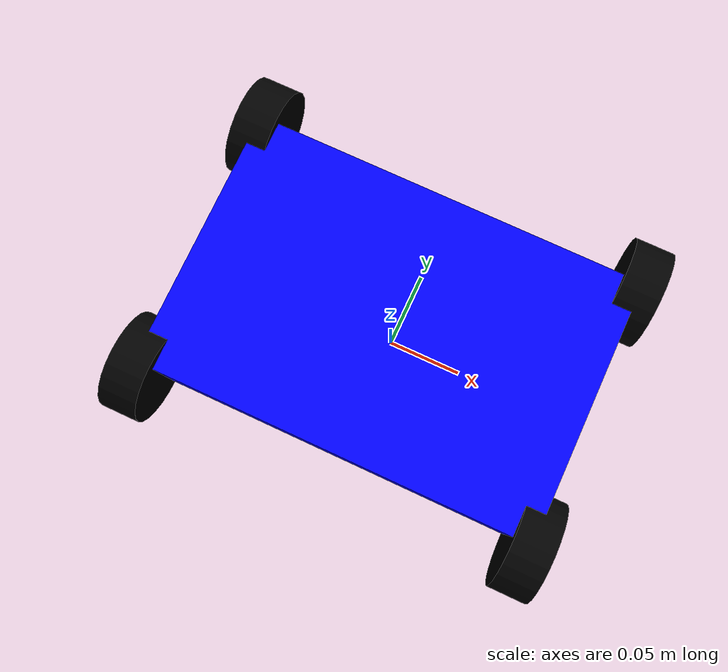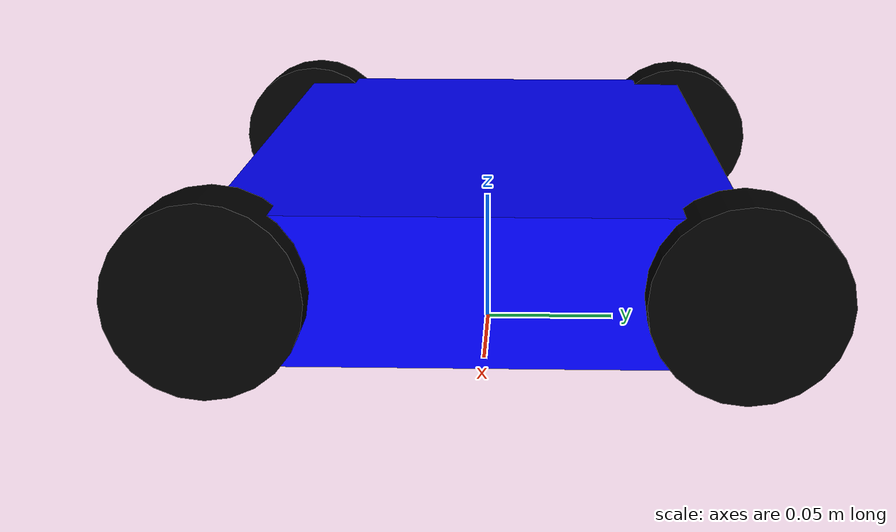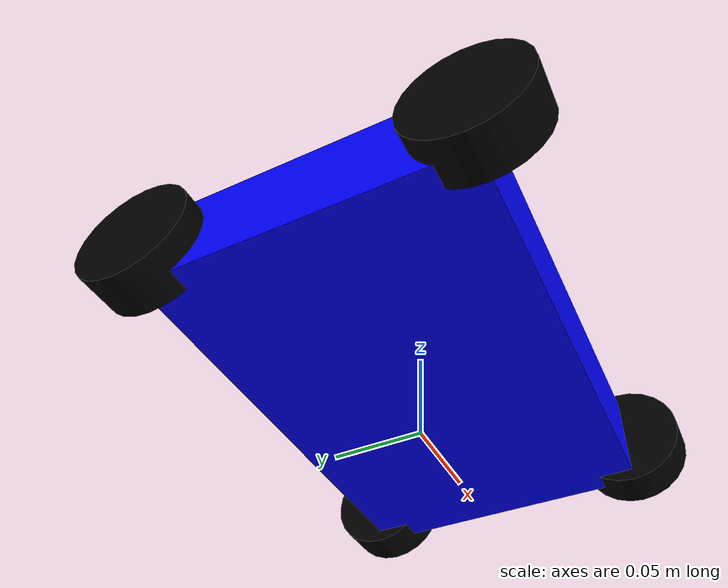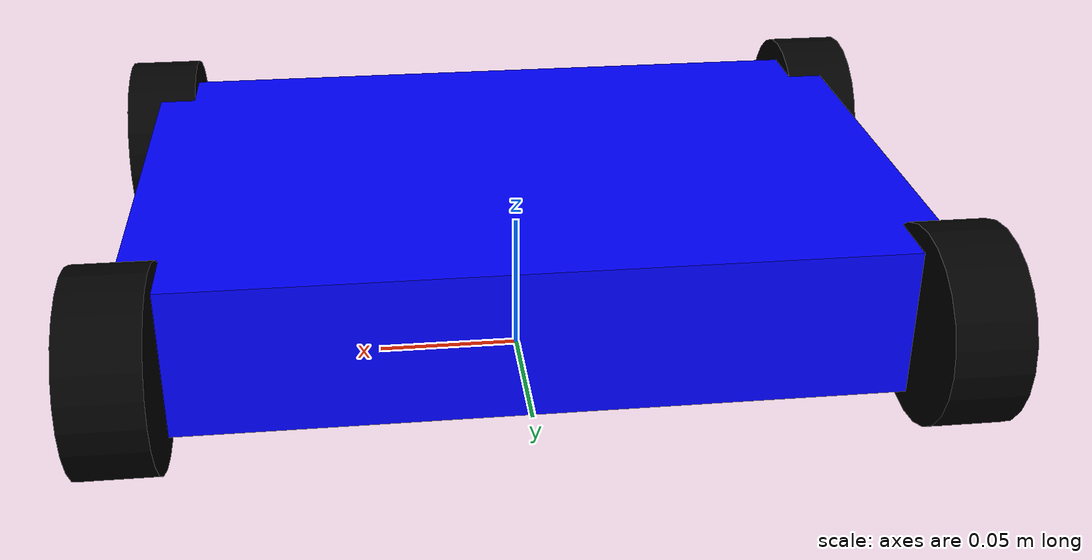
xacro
<?xml version="1.0"?>
<robot xmlns:xacro="http://ros.org/wiki/xacro" name="smart_car">

  <!-- Robot parameters -->
  <xacro:property name="wheel_diameter" value="0.064"/>
  <xacro:property name="wheel_radius" value="${wheel_diameter/2.0}"/>
  <xacro:property name="wheel_width" value="0.025"/>
  <xacro:property name="wheelbase_length" value="0.257"/>
  <xacro:property name="wheelbase_width" value="0.17"/>

  <!-- Base footprint -->
  <link name="base_footprint"/>

  <!-- Chassis -->
  <link name="chassis_link">
    <inertial>
      <origin xyz="0 0 0.05" rpy="0 0 0"/>
      <mass value="2.0"/>
      <inertia ixx="0.02" iyy="0.02" izz="0.04" ixy="0.0" ixz="0.0" iyz="0.0"/>
    </inertial>
    <visual>
      <geometry>
        <box size="${wheelbase_length} ${wheelbase_width} 0.05"/>
      </geometry>
      <material name="blue">
        <color rgba="0 0 1 1"/>
      </material>
    </visual>
    <collision>
      <geometry>
        <box size="${wheelbase_length} ${wheelbase_width} 0.05"/>
      </geometry>
    </collision>
  </link>

  <!-- Connect base_footprint to chassis -->
  <joint name="base_to_chassis" type="fixed">
    <parent link="base_footprint"/>
    <child link="chassis_link"/>
    <origin xyz="0 0 0.05" rpy="0 0 0"/>
  </joint>

  <!-- MACRO for wheels -->
  <xacro:macro name="wheel" params="name x y">
    <link name="${name}_link">
      <inertial>
        <origin xyz="0 0 0" rpy="0 0 0"/>
        <mass value="0.1"/>
        <inertia ixx="0.001" iyy="0.001" izz="0.002" ixy="0.0" ixz="0.0" iyz="0.0"/>
      </inertial>
      <visual>
        <geometry>
          <cylinder radius="${wheel_radius}" length="${wheel_width}"/>
        </geometry>
        <material name="black">
          <color rgba="0 0 0 1"/>
        </material>
      </visual>
      <collision>
        <geometry>
          <cylinder radius="${wheel_radius}" length="${wheel_width}"/>
        </geometry>
      </collision>
    </link>

    <joint name="${name}_joint" type="continuous">
      <parent link="chassis_link"/>
      <child link="${name}_link"/>
      <origin xyz="${x} ${y} 0" rpy="0 1.5708 0"/>
      <axis xyz="0 1 0"/>
    </joint>
  </xacro:macro>

  <!-- MACRO for steering -->
  <xacro:macro name="steering_wheel" params="side x y">
    <!-- Steering link -->
    <link name="front_${side}_steer_link">
      <inertial>
        <origin xyz="0 0 0" rpy="0 0 0"/>
        <mass value="0.05"/>
        <inertia ixx="0.0005" iyy="0.0005" izz="0.001" ixy="0.0" ixz="0.0" iyz="0.0"/>
      </inertial>
    </link>

    <!-- Steering joint -->
    <joint name="front_${side}_wheel_steer_joint" type="revolute">
      <parent link="chassis_link"/>
      <child link="front_${side}_steer_link"/>
      <origin xyz="${x} ${y} 0" rpy="0 0 0"/>
      <axis xyz="0 0 1"/>
      <limit lower="-0.785" upper="0.785" effort="1" velocity="1"/>
    </joint>

    <!-- Wheel link -->
    <link name="front_${side}_wheel_link">
      <visual>
        <geometry>
          <cylinder radius="${wheel_radius}" length="${wheel_width}"/>
        </geometry>
        <material name="black"/>
      </visual>
      <collision>
        <geometry>
          <cylinder radius="${wheel_radius}" length="${wheel_width}"/>
        </geometry>
      </collision>
      <inertial>
        <origin xyz="0 0 0" rpy="0 0 0"/>
        <mass value="0.1"/>
        <inertia ixx="0.001" iyy="0.001" izz="0.002" ixy="0.0" ixz="0.0" iyz="0.0"/>
      </inertial>
    </link>

    <!-- Wheel joint -->
    <joint name="front_${side}_wheel_joint" type="continuous">
      <parent link="front_${side}_steer_link"/>
      <child link="front_${side}_wheel_link"/>
      <origin xyz="0 0 0" rpy="0 1.5708 0"/>
      <axis xyz="0 1 0"/>
    </joint>
  </xacro:macro>

  <!-- BACK WHEELS -->
  <xacro:wheel name="back_left_wheel"  x="-${wheelbase_length/2}" y="${wheelbase_width/2}"/>
  <xacro:wheel name="back_right_wheel" x="-${wheelbase_length/2}" y="-${wheelbase_width/2}"/>

  <!-- FRONT WHEELS with steering -->
  <xacro:steering_wheel side="left"  x="${wheelbase_length/2}" y="${wheelbase_width/2}"/>
  <xacro:steering_wheel side="right" x="${wheelbase_length/2}" y="-${wheelbase_width/2}"/>

</robot>
